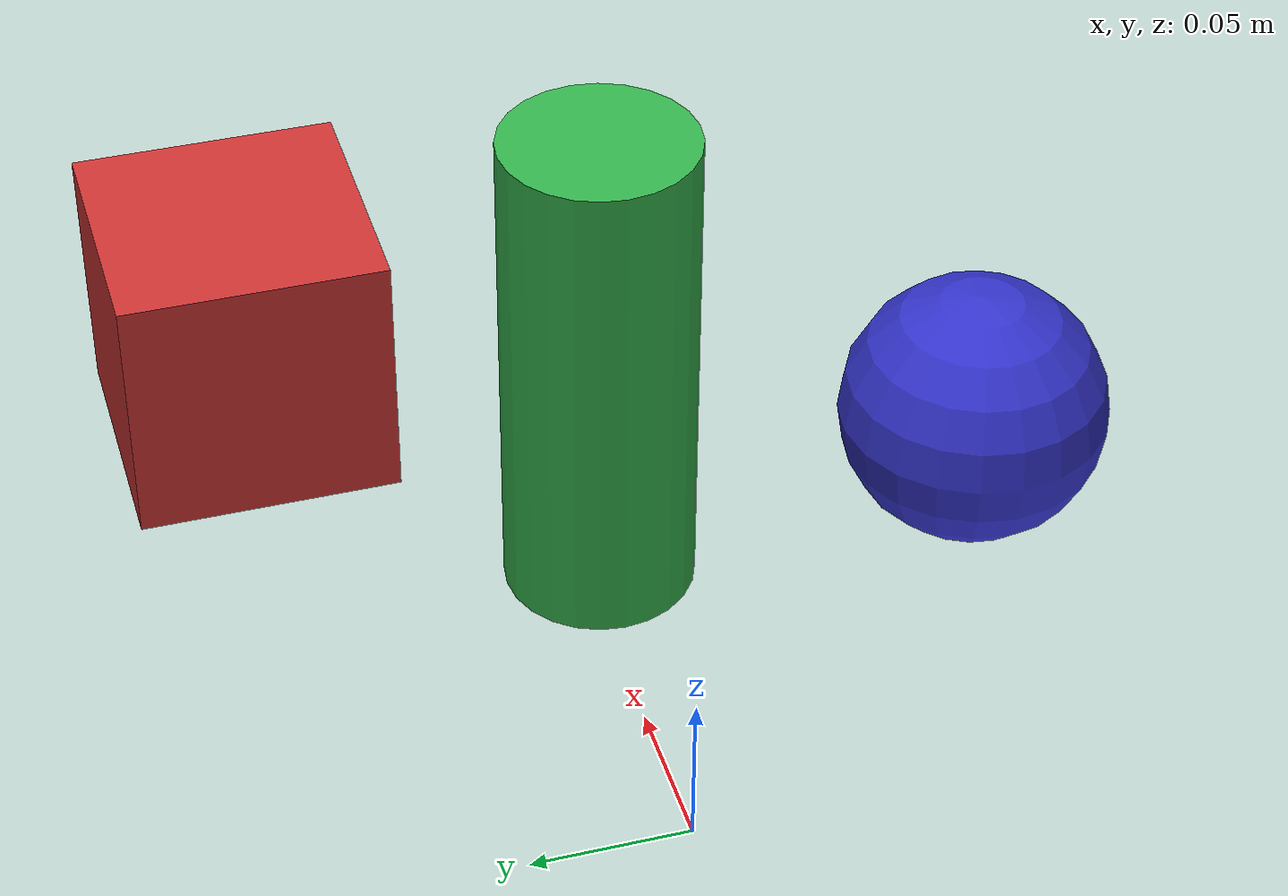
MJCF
<mujoco>
    <option timestep="0.002" gravity="0 0 -9.81"/>

    <visual>
        <headlight diffuse="0.6 0.6 0.6" ambient="0.3 0.3 0.3" specular="0 0 0"/>
        <rgba haze="0.15 0.25 0.35 1"/>
        <global azimuth="120" elevation="-20"/>
    </visual>

    <statistic extent="2" center="0 0 0.5"/>

    <worldbody>
        <!-- Include the complete hand scene -->
        <include file="scene_left.xml"/>

        <!-- Add objects in reachable positions -->
        <body name="cylinder_object" pos="0.1 0 0.1">
            <freejoint/>
            <geom name="cylinder" type="cylinder" size="0.03 0.08" rgba="0.2 0.7 0.3 1"/>
        </body>

        <body name="box_object" pos="0.15 0.1 0.1">
            <freejoint/>
            <geom name="box" type="box" size="0.04 0.04 0.04" rgba="0.8 0.2 0.2 1"/>
        </body>

        <body name="sphere_object" pos="0.05 -0.1 0.1">
            <freejoint/>
            <geom name="sphere" type="sphere" size="0.04" rgba="0.2 0.2 0.8 1"/>
        </body>
    </worldbody>
</mujoco>

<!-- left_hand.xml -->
<mujoco model="allegro_left">
  <compiler angle="radian" meshdir="assets" autolimits="true"/>

  <option cone="elliptic" impratio="10"/>

  <default>
    <default class="allegro_left">
      <joint axis="0 1 0" damping=".1"/>
      <position kp="1"/>
      <geom density="800"/>

      <default class="visual">
        <geom type="mesh" contype="0" conaffinity="0" group="2" material="black"/>
        <default class="palm_visual">
          <geom mesh="base_link"/>
        </default>
        <default class="base_visual">
          <geom mesh="link_0.0"/>
        </default>
        <default class="proximal_visual">
          <geom mesh="link_1.0"/>
        </default>
        <default class="medial_visual">
          <geom mesh="link_2.0"/>
        </default>
        <default class="distal_visual">
          <geom mesh="link_3.0"/>
        </default>
        <default class="fingertip_visual">
          <geom pos="0 0 0.0267" material="white" mesh="link_3.0_tip"/>
        </default>
        <default class="thumbtip_visual">
          <geom pos="0 0 0.0423" material="white" mesh="link_15.0_tip"/>
        </default>
      </default>

      <default class="collision">
        <geom group="3" type="box" mass="0" friction="1.0 0.1 0.1" contype="1" conaffinity="1" solimp="0.02 1" solref="0.002 1"/>
        <default class="palm_collision">
          <geom size="0.0204 0.0565 0.0475" pos="-0.0093 0 -0.0475" friction="1.0 0.1 0.1" contype="1" conaffinity="1" solimp="0.02 1" solref="0.002 1"/>
        </default>
        <default class="base_collision">
          <geom size="0.0098 0.01375 0.0082" pos="0 0 0.0082" friction="1.0 0.1 0.1" contype="1" conaffinity="1" solimp="0.02 1" solref="0.002 1"/>
          <default class="thumb_base_collision">
            <geom size="0.0179 0.017 0.02275" pos="-0.0179 0.009 0.0145" friction="1.0 0.1 0.1" contype="1" conaffinity="1" solimp="0.02 1" solref="0.002 1"/>
          </default>
        </default>
        <default class="proximal_collision">
          <geom size="0.0098 0.01375 0.027" pos="0 0 0.027" friction="1.0 0.1 0.1" contype="1" conaffinity="1" solimp="0.02 1" solref="0.002 1"/>
          <default class="thumb_proximal_collision">
            <geom size="0.0098 0.01375 0.00885" pos="0 0 0.00885" friction="1.0 0.1 0.1" contype="1" conaffinity="1" solimp="0.02 1" solref="0.002 1"/>
          </default>
        </default>
        <default class="medial_collision">
          <geom size="0.0098 0.01375 0.0192" pos="0 0 0.0192" friction="1.0 0.1 0.1" contype="1" conaffinity="1" solimp="0.02 1" solref="0.002 1"/>
          <default class="thumb_medial_collision">
            <geom size="0.0098 0.01375 0.0257" pos="0 0 0.0257" friction="1.0 0.1 0.1" contype="1" conaffinity="1" solimp="0.02 1" solref="0.002 1"/>
          </default>
        </default>
        <default class="distal_collision">
          <geom size="0.0098 0.01375 0.008" pos="0 0 0.008" friction="1.0 0.1 0.1" contype="1" conaffinity="1" solimp="0.02 1" solref="0.002 1"/>
          <default class="thumb_distal_collision">
            <geom size="0.0098 0.01375 0.0157" pos="0 0 0.0157" friction="1.0 0.1 0.1" contype="1" conaffinity="1" solimp="0.02 1" solref="0.002 1"/>
          </default>
        </default>
        <default class="fingertip_collision">
          <geom type="capsule" size="0.012 0.01" pos="0 0 0.019" friction="1.0 0.1 0.1" contype="1" conaffinity="1" solimp="0.02 1" solref="0.002 1"/>
          <default class="thumbtip_collision">
            <geom type="capsule" size="0.012 0.008" pos="0 0 0.035" friction="1.0 0.1 0.1" contype="1" conaffinity="1" solimp="0.02 1" solref="0.002 1"/>
          </default>
        </default>
      </default>

      <default class="base">
        <joint axis="0 0 1" range="-0.47 0.47"/>
        <position ctrlrange="-0.47 0.47"/>
      </default>
      <default class="proximal">
        <joint range="-0.196 1.61"/>
        <position ctrlrange="-0.196 1.61"/>
      </default>
      <default class="medial">
        <joint range="-0.174 1.709"/>
        <position ctrlrange="-0.174 1.709"/>
      </default>
      <default class="distal">
        <joint range="-0.227 1.618"/>
        <position ctrlrange="-0.227 1.618"/>
      </default>
      <default class="thumb_base">
        <joint axis="1 0 0" range="0.263 1.396"/>
        <position ctrlrange="0.263 1.396"/>
      </default>
      <default class="thumb_proximal">
        <joint axis="0 0 -1" range="-0.105 1.163"/>
        <position ctrlrange="-0.105 1.163"/>
      </default>
      <default class="thumb_medial">
        <joint range="-0.189 1.644"/>
        <position ctrlrange="-0.189 1.644"/>
      </default>
      <default class="thumb_distal">
        <joint range="-0.162 1.719"/>
        <position ctrlrange="-0.162 1.719"/>
      </default>
    </default>
  </default>

  <asset>
    <material name="black" rgba="0.2 0.2 0.2 1"/>
    <material name="white" rgba="0.9 0.9 0.9 1"/>

    <mesh file="base_link_left.stl"/>
    <mesh file="link_0.0.stl"/>
    <mesh file="link_1.0.stl"/>
    <mesh file="link_2.0.stl"/>
    <mesh file="link_3.0.stl"/>
    <mesh file="link_3.0_tip.stl"/>
    <mesh file="link_12.0_left.stl"/>
    <mesh file="link_13.0.stl"/>
    <mesh file="link_14.0.stl"/>
    <mesh file="link_15.0.stl"/>
    <mesh file="link_15.0_tip.stl"/>
  </asset>

  <worldbody>
    <body name="palm" quat="-1 1 0 0" childclass="allegro_left">
      <freejoint/>
      <geom quat="1 -1 0 0" class="palm_visual" mesh="base_link_left"/>
      <geom class="palm_collision"/>
      <!-- First finger -->
      <body name="ff_base" pos="0 -0.0435 -0.001542" quat="0.999048 0.0436194 0 0">
        <joint name="ffj0" class="base"/>
        <geom class="base_visual"/>
        <geom class="base_collision"/>
        <body name="ff_proximal" pos="0 0 0.0164">
          <joint name="ffj1" class="proximal"/>
          <geom class="proximal_visual"/>
          <geom class="proximal_collision"/>
          <body name="ff_medial" pos="0 0 0.054">
            <joint name="ffj2" class="medial"/>
            <geom class="medial_visual"/>
            <geom class="medial_collision"/>
            <body name="ff_distal" pos="0 0 0.0384">
              <joint name="ffj3" class="distal"/>
              <geom class="distal_visual"/>
              <geom class="distal_collision"/>
              <body name="ff_tip">
                <geom class="fingertip_visual"/>
                <geom class="fingertip_collision"/>
              </body>
            </body>
          </body>
        </body>
      </body>
      <!-- Middle finger -->
      <body name="mf_base" pos="0 0 0.0007" quat="1 0 0 0">
        <joint name="mfj0" class="base"/>
        <geom class="base_visual"/>
        <geom class="base_collision"/>
        <body name="mf_proximal" pos="0 0 0.0164">
          <joint name="mfj1" class="proximal"/>
          <geom class="proximal_visual"/>
          <geom class="proximal_collision"/>
          <body name="mf_medial" pos="0 0 0.054">
            <joint name="mfj2" class="medial"/>
            <geom class="medial_visual"/>
            <geom class="medial_collision"/>
            <body name="mf_distal" pos="0 0 0.0384">
              <joint name="mfj3" class="distal"/>
              <geom class="distal_visual"/>
              <geom class="distal_collision"/>
              <body name="mf_tip">
                <geom class="fingertip_visual"/>
                <geom class="fingertip_collision"/>
              </body>
            </body>
          </body>
        </body>
      </body>
      <!-- Ring finger -->
      <body name="rf_base" pos="0 0.0435 -0.001542" quat="0.999048 -0.0436194 0 0">
        <joint name="rfj0" class="base"/>
        <geom class="base_visual"/>
        <geom class="base_collision"/>
        <body name="rf_proximal" pos="0 0 0.0164">
          <joint name="rfj1" class="proximal"/>
          <geom class="proximal_visual"/>
          <geom class="proximal_collision"/>
          <body name="rf_medial" pos="0 0 0.054">
            <joint name="rfj2" class="medial"/>
            <geom class="medial_visual"/>
            <geom class="medial_collision"/>
            <body name="rf_distal" pos="0 0 0.0384">
              <joint name="rfj3" class="distal"/>
              <geom class="distal_visual"/>
              <geom class="distal_collision"/>
              <body name="rf_tip">
                <geom class="fingertip_visual"/>
                <geom class="fingertip_collision"/>
              </body>
            </body>
          </body>
        </body>
      </body>

      <!-- Thumb -->
      <body name="th_base" pos="-0.0182 -0.019333 -0.045987" quat="0.477714 0.521334 -0.521334 0.477714">
        <joint name="thj0" class="thumb_base"/>
        <geom quat="0 1 0 0" class="visual" mesh="link_12.0_left"/>
        <geom class="thumb_base_collision"/>
        <body name="th_proximal" pos="-0.027 -0.005 0.0399">
          <joint name="thj1" class="thumb_proximal"/>
          <geom class="visual" mesh="link_13.0"/>
          <geom class="thumb_proximal_collision"/>
          <body name="th_medial" pos="0 0 0.0177">
            <joint name="thj2" class="thumb_medial"/>
            <geom class="visual" mesh="link_14.0"/>
            <geom class="thumb_medial_collision"/>
            <body name="th_distal" pos="0 0 0.0514">
              <joint name="thj3" class="thumb_distal"/>
              <geom class="visual" mesh="link_15.0"/>
              <geom class="thumb_distal_collision"/>
              <body name="th_tip">
                <geom class="thumbtip_visual"/>
                <geom class="thumbtip_collision"/>
              </body>
            </body>
          </body>
        </body>
      </body>
    </body>
  </worldbody>

  <contact>
    <exclude body1="palm" body2="ff_base"/>
    <exclude body1="palm" body2="mf_base"/>
    <exclude body1="palm" body2="rf_base"/>
    <exclude body1="palm" body2="th_base"/>
    <exclude body1="palm" body2="th_proximal"/>
  </contact>

  <actuator>
    <motor name="ffa0" joint="ffj0" class="base" forcerange="-7.0 7.0"/>
    <motor name="ffa1" joint="ffj1" class="proximal" forcerange="-7.0 7.0"/>
    <motor name="ffa2" joint="ffj2" class="medial" forcerange="-7.0 7.0"/>
    <motor name="ffa3" joint="ffj3" class="distal" forcerange="-7.0 7.0"/>
    <motor name="mfa0" joint="mfj0" class="base" forcerange="-7.0 7.0"/>
    <motor name="mfa1" joint="mfj1" class="proximal" forcerange="-7.0 7.0"/>
    <motor name="mfa2" joint="mfj2" class="medial" forcerange="-7.0 7.0"/>
    <motor name="mfa3" joint="mfj3" class="distal" forcerange="-7.0 7.0"/>
    <motor name="rfa0" joint="rfj0" class="base" forcerange="-7.0 7.0"/>
    <motor name="rfa1" joint="rfj1" class="proximal" forcerange="-7.0 7.0"/>
    <motor name="rfa2" joint="rfj2" class="medial" forcerange="-7.0 7.0"/>
    <motor name="rfa3" joint="rfj3" class="distal" forcerange="-7.0 7.0"/>
    <motor name="tha0" joint="thj0" class="thumb_base" forcerange="-7.0 7.0"/>
    <motor name="tha1" joint="thj1" class="thumb_proximal" forcerange="-7.0 7.0"/>
    <motor name="tha2" joint="thj2" class="thumb_medial" forcerange="-7.0 7.0"/>
    <motor name="tha3" joint="thj3" class="thumb_distal" forcerange="-7.0 7.0"/>
  </actuator>
</mujoco>

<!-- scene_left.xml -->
<mujoco model="left_allegro_hand scene">
  <include file="left_hand.xml"/>

  <statistic center="0 0 0" extent="0.3"/>

  <visual>
    <rgba haze="0.15 0.25 0.35 1"/>
    <quality shadowsize="8192"/>
    <global azimuth="220" elevation="-40"/>
  </visual>

  <asset>
    <texture type="skybox" builtin="gradient" rgb1="0.3 0.5 0.7" rgb2="0 0 0" width="512" height="3072"/>
    <texture type="2d" name="groundplane" builtin="checker" mark="edge" rgb1="0.2 0.3 0.4" rgb2="0.1 0.2 0.3"
      markrgb="0.8 0.8 0.8" width="300" height="300"/>
    <material name="groundplane" texture="groundplane" texuniform="true" texrepeat="5 5" reflectance="0.2"/>
  </asset>

  <worldbody>
    <light pos="0 0 1"/>
    <light pos="0.3 0 1.5" dir="0 0 -1" directional="true"/>
    <geom name="floor" pos="0 0 -0.1" size="0 0 0.05" type="plane" material="groundplane"/>
    <body name="object" pos="0 0 0.1">
      <freejoint/>
      <geom type="ellipsoid" size="0.03 0.04 0.02" rgba="0.5 0.7 0.5 1" condim="6" priority="1" mass="0.1"
        friction="0.7 0.002 0.002"/>
    </body>
  </worldbody>
</mujoco>
